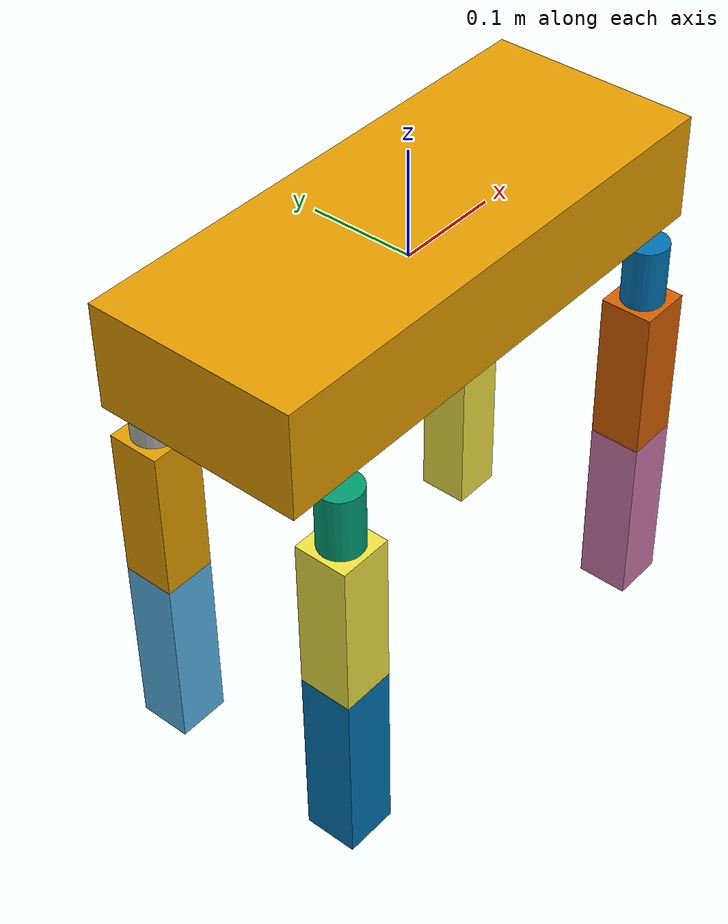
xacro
<?xml version="1.0"?>
<robot name="quadruped" xmlns:xacro="http://www.ros.org/wiki/xacro">

  <!-- ================= BASE ================= -->
  <link name="base_link">
    <visual>
      <geometry><box size="0.5 0.2 0.1"/></geometry>
    </visual>
    <collision>
      <geometry><box size="0.5 0.2 0.1"/></geometry>
    </collision>
    <inertial>
      <mass value="1.5"/>
      <origin xyz="0 0 0"/>
      <inertia ixx="0.5" iyy="0.5" izz="0.5" ixy="0" ixz="0" iyz="0"/>
    </inertial>
  </link>

  <!-- ================= LEG MACRO ================= -->
  <xacro:macro name="leg" params="prefix x y">

    <!-- HIP -->
    <link name="${prefix}_hip">
      <visual>
        <origin xyz="0 0 -0.03"/>
        <geometry><cylinder length="0.06" radius="0.02"/></geometry>
      </visual>
      <collision>
        <origin xyz="0 0 -0.03"/>
        <geometry><cylinder length="0.06" radius="0.02"/></geometry>
      </collision>
      <inertial>
        <mass value="0.1"/>
        <origin xyz="0 0 -0.03"/>
        <inertia ixx="0.0005" iyy="0.0005" izz="0.0001"
                 ixy="0" ixz="0" iyz="0"/>
      </inertial>
    </link>

    <joint name="${prefix}_hip_joint" type="revolute">
      <parent link="base_link"/>
      <child link="${prefix}_hip"/>
      <origin xyz="${x} ${y} -0.05"/>
      <axis xyz="0 0 1"/>
      <dynamics damping="10.0" friction="1.0"/>
      <limit effort="50" velocity="0.5" lower="-1.5" upper="1.5"/>
    </joint>

    <!-- THIGH -->
    <link name="${prefix}_thigh">
      <visual>
        <origin xyz="0 0 -0.075"/>
        <geometry><box size="0.05 0.05 0.15"/></geometry>
      </visual>
      <collision>
        <origin xyz="0 0 -0.075"/>
        <geometry><box size="0.05 0.05 0.15"/></geometry>
      </collision>
      <inertial>
        <mass value="0.5"/>
        <origin xyz="0 0 -0.075"/>
        <inertia ixx="0.001" iyy="0.001" izz="0.0005"
                 ixy="0" ixz="0" iyz="0"/>
      </inertial>
    </link>

    <joint name="${prefix}_thigh_joint" type="revolute">
      <parent link="${prefix}_hip"/>
      <child link="${prefix}_thigh"/>
      <origin xyz="0 0 -0.06"/>
      <axis xyz="0 1 0"/>
      <dynamics damping="10.0" friction="1.0"/>
      <limit effort="50" velocity="0.5" lower="-1.5" upper="1.5"/>
    </joint>

    <!-- FOOT -->
    <link name="${prefix}_foot">
      <visual>
        <origin xyz="0 0 -0.09"/>
        <geometry><box size="0.05 0.05 0.18"/></geometry>
      </visual>
      <collision>
        <origin xyz="0 0 -0.09"/>
        <geometry><box size="0.05 0.05 0.18"/></geometry>
      </collision>
      <inertial>
        <mass value="0.4"/>
        <origin xyz="0 0 -0.1"/>
        <inertia ixx="0.001" iyy="0.001" izz="0.0005"
                 ixy="0" ixz="0" iyz="0"/>
      </inertial>
    </link>
      <gazebo reference="${prefix}_foot">
        <mu1>5.0</mu1>
        <mu2>5.0</mu2>
        <kp>20000.0</kp>
        <kd>5.0</kd>
      </gazebo>

    <joint name="${prefix}_knee_joint" type="revolute">
      <parent link="${prefix}_thigh"/>
      <child link="${prefix}_foot"/>
      <origin xyz="0 0 -0.15"/>
      <axis xyz="0 1 0"/>
      <dynamics damping="10.0" friction="1.0"/>
      <limit effort="50" velocity="0.5" lower="-2.0" upper="0.0"/>
    </joint>

    <!-- TRANSMISSIONS -->
    <transmission name="${prefix}_hip_trans">
      <type>transmission_interface/SimpleTransmission</type>

      <joint name="${prefix}_hip_joint">
        <hardwareInterface>hardware_interface/PositionJointInterface</hardwareInterface>
      </joint>

      <actuator name="${prefix}_hip_motor">
        <hardwareInterface>hardware_interface/PositionJointInterface</hardwareInterface>
        <mechanicalReduction>1</mechanicalReduction>
      </actuator>
   </transmission>

    <transmission name="${prefix}_thigh_trans">
  <type>transmission_interface/SimpleTransmission</type>

  <joint name="${prefix}_thigh_joint">
    <hardwareInterface>hardware_interface/PositionJointInterface</hardwareInterface>
  </joint>

  <actuator name="${prefix}_thigh_motor">
    <hardwareInterface>hardware_interface/PositionJointInterface</hardwareInterface>
    <mechanicalReduction>1</mechanicalReduction>
  </actuator>
</transmission>

   <transmission name="${prefix}_knee_trans">
  <type>transmission_interface/SimpleTransmission</type>

  <joint name="${prefix}_knee_joint">
    <hardwareInterface>hardware_interface/PositionJointInterface</hardwareInterface>
  </joint>

  <actuator name="${prefix}_knee_motor">
    <hardwareInterface>hardware_interface/PositionJointInterface</hardwareInterface>
    <mechanicalReduction>1</mechanicalReduction>
  </actuator>
</transmission>

  </xacro:macro>

  <!-- ================= LEGS ================= -->
  <xacro:leg prefix="front_left"  x="0.2"  y="0.1"/>
  <xacro:leg prefix="front_right" x="0.2"  y="-0.1"/>
  <xacro:leg prefix="rear_left"   x="-0.2" y="0.1"/>
  <xacro:leg prefix="rear_right"  x="-0.2" y="-0.1"/>

  <!-- ================= ROS2 CONTROL ================= -->
  <ros2_control name="QuadrupedSystem" type="system">
  <hardware>
    <plugin>gazebo_ros2_control/GazeboSystem</plugin>
  </hardware>

    <!-- 12 joints explicitly (NO xacro:for) -->
    <!-- FRONT LEFT -->
    <joint name="front_left_hip_joint">
      <command_interface name="position"/>
      <state_interface name="position"/>
      <state_interface name="velocity"/>
    </joint>
    <joint name="front_left_thigh_joint">
      <command_interface name="position"/>
      <state_interface name="position"/>
      <state_interface name="velocity"/>
    </joint>
    <joint name="front_left_knee_joint">
      <command_interface name="position"/>
      <state_interface name="position"/>
      <state_interface name="velocity"/>
    </joint>

    <!-- FRONT RIGHT -->
    <joint name="front_right_hip_joint">
      <command_interface name="position"/>
      <state_interface name="position"/>
      <state_interface name="velocity"/>
    </joint>
    <joint name="front_right_thigh_joint">
      <command_interface name="position"/>
      <state_interface name="position"/>
      <state_interface name="velocity"/>
    </joint>
    <joint name="front_right_knee_joint">
      <command_interface name="position"/>
      <state_interface name="position"/>
      <state_interface name="velocity"/>
    </joint>

    <!-- REAR LEFT -->
    <joint name="rear_left_hip_joint">
      <command_interface name="position"/>
      <state_interface name="position"/>
      <state_interface name="velocity"/>
    </joint>
    <joint name="rear_left_thigh_joint">
      <command_interface name="position"/>
      <state_interface name="position"/>
      <state_interface name="velocity"/>
    </joint>
    <joint name="rear_left_knee_joint">
      <command_interface name="position"/>
      <state_interface name="position"/>
      <state_interface name="velocity"/>
    </joint>

    <!-- REAR RIGHT -->
    <joint name="rear_right_hip_joint">
      <command_interface name="position"/>
      <state_interface name="position"/>
      <state_interface name="velocity"/>
    </joint>
    <joint name="rear_right_thigh_joint">
      <command_interface name="position"/>
      <state_interface name="position"/>
      <state_interface name="velocity"/>
    </joint>
    <joint name="rear_right_knee_joint">
      <command_interface name="position"/>
      <state_interface name="position"/>
      <state_interface name="velocity"/>
    </joint>

  </ros2_control>

  <gazebo>
    <plugin name="gazebo_ros2_control" filename="libgazebo_ros2_control.so">
      <parameters>$(find quadruped_description)/config/controllers.yaml</parameters>
    </plugin>
  </gazebo>
  <gazebo>
    <physics type="ode">
      <max_step_size>0.001</max_step_size>
      <real_time_update_rate>1000</real_time_update_rate>
    </physics>
  </gazebo>
</robot>
